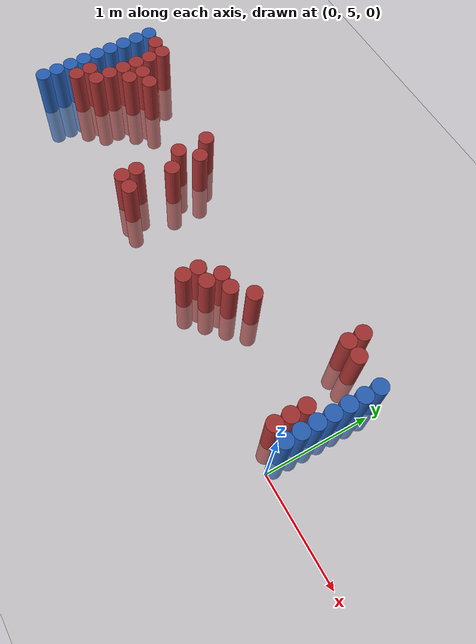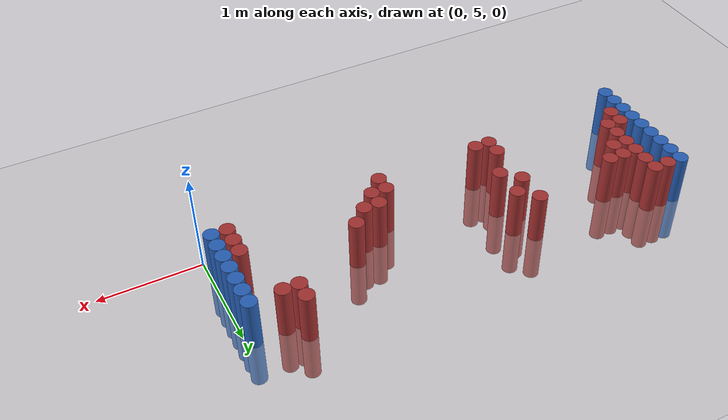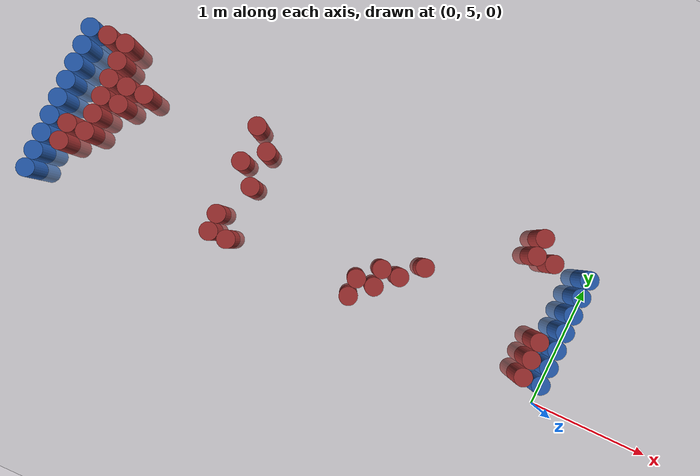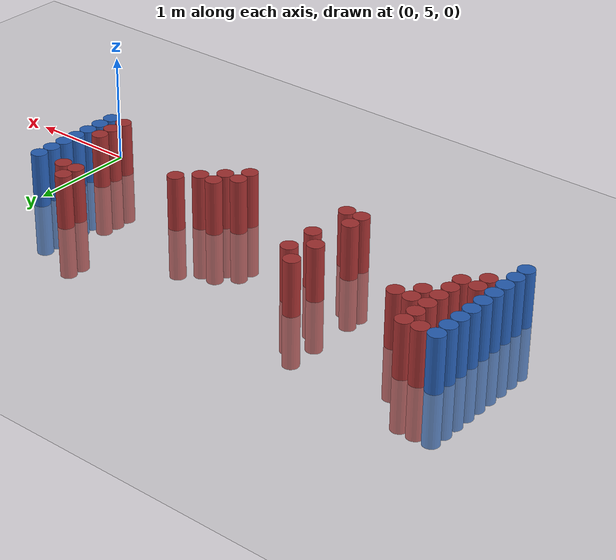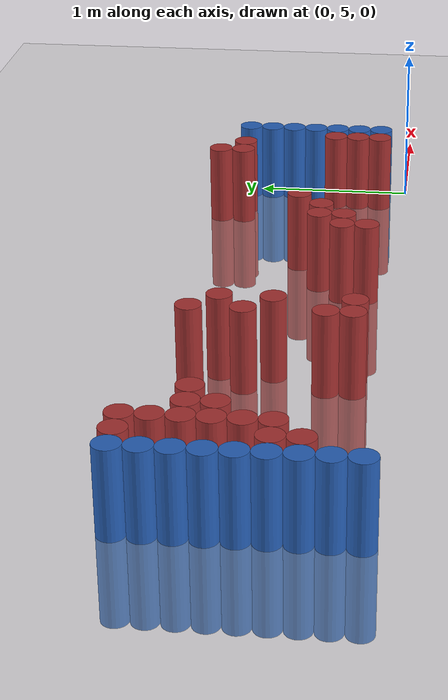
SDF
<sdf version="1.6">
 <world name="default">
  <model name="ground_plane">
   <static>1</static>
   <link name="link">
    <collision name="collision">
     <geometry><plane><normal>0 0 1</normal><size>100 100</size></plane></geometry>
     <surface><friction><ode><mu>100</mu><mu2>50</mu2></ode></friction></surface>
    </collision>
    <visual name="visual">
     <cast_shadows>0</cast_shadows>
     <geometry><plane><normal>0 0 1</normal><size>100 100</size></plane></geometry>
     <material>
      <script><uri>file://media/materials/scripts/gazebo.material</uri><name>Gazebo/Grey</name></script>
     </material>
    </visual>
   </link>
  </model>
  <model name="unit_cylinder_95">
   <static>1</static>
   <pose>-4.425000 5.025000 0.000000 0.000000 0.000000 0.000000</pose>
   <link name="link">
    <inertial>
     <mass>1</mass>
     <inertia><ixx>0.145833</ixx><ixy>0</ixy><ixz>0</ixz><iyy>0.145833</iyy><iyz>0</iyz><izz>0.125</izz></inertia>
    </inertial>
    <collision name="collision">
     <geometry><cylinder><radius>0.075000</radius><length>1</length></cylinder></geometry>
    </collision>
    <visual name="visual">
     <geometry><cylinder><radius>0.075000</radius><length>1</length></cylinder></geometry>
     <material>
      <ambient>0.152000 0.379000 0.720000 1</ambient>
      <diffuse>0.152000 0.379000 0.720000 1</diffuse>
     </material>
     <material>
      <script><name>Gazebo/Grey</name><uri>file://media/materials/scripts/gazebo.material</uri></script>
     </material>
    </visual>
   </link>
  </model>
  <model name="unit_cylinder_96">
   <static>1</static>
   <pose>-4.425000 5.175000 0.000000 0.000000 0.000000 0.000000</pose>
   <link name="link">
    <inertial>
     <mass>1</mass>
     <inertia><ixx>0.145833</ixx><ixy>0</ixy><ixz>0</ixz><iyy>0.145833</iyy><iyz>0</iyz><izz>0.125</izz></inertia>
    </inertial>
    <collision name="collision">
     <geometry><cylinder><radius>0.075000</radius><length>1</length></cylinder></geometry>
    </collision>
    <visual name="visual">
     <geometry><cylinder><radius>0.075000</radius><length>1</length></cylinder></geometry>
     <material>
      <ambient>0.152000 0.379000 0.720000 1</ambient>
      <diffuse>0.152000 0.379000 0.720000 1</diffuse>
     </material>
     <material>
      <script><name>Gazebo/Grey</name><uri>file://media/materials/scripts/gazebo.material</uri></script>
     </material>
    </visual>
   </link>
  </model>
  <model name="unit_cylinder_97">
   <static>1</static>
   <pose>-4.425000 5.325000 0.000000 0.000000 0.000000 0.000000</pose>
   <link name="link">
    <inertial>
     <mass>1</mass>
     <inertia><ixx>0.145833</ixx><ixy>0</ixy><ixz>0</ixz><iyy>0.145833</iyy><iyz>0</iyz><izz>0.125</izz></inertia>
    </inertial>
    <collision name="collision">
     <geometry><cylinder><radius>0.075000</radius><length>1</length></cylinder></geometry>
    </collision>
    <visual name="visual">
     <geometry><cylinder><radius>0.075000</radius><length>1</length></cylinder></geometry>
     <material>
      <ambient>0.152000 0.379000 0.720000 1</ambient>
      <diffuse>0.152000 0.379000 0.720000 1</diffuse>
     </material>
     <material>
      <script><name>Gazebo/Grey</name><uri>file://media/materials/scripts/gazebo.material</uri></script>
     </material>
    </visual>
   </link>
  </model>
  <model name="unit_cylinder_98">
   <static>1</static>
   <pose>-4.425000 5.475000 0.000000 0.000000 0.000000 0.000000</pose>
   <link name="link">
    <inertial>
     <mass>1</mass>
     <inertia><ixx>0.145833</ixx><ixy>0</ixy><ixz>0</ixz><iyy>0.145833</iyy><iyz>0</iyz><izz>0.125</izz></inertia>
    </inertial>
    <collision name="collision">
     <geometry><cylinder><radius>0.075000</radius><length>1</length></cylinder></geometry>
    </collision>
    <visual name="visual">
     <geometry><cylinder><radius>0.075000</radius><length>1</length></cylinder></geometry>
     <material>
      <ambient>0.152000 0.379000 0.720000 1</ambient>
      <diffuse>0.152000 0.379000 0.720000 1</diffuse>
     </material>
     <material>
      <script><name>Gazebo/Grey</name><uri>file://media/materials/scripts/gazebo.material</uri></script>
     </material>
    </visual>
   </link>
  </model>
  <model name="unit_cylinder_99">
   <static>1</static>
   <pose>-4.425000 5.625000 0.000000 0.000000 0.000000 0.000000</pose>
   <link name="link">
    <inertial>
     <mass>1</mass>
     <inertia><ixx>0.145833</ixx><ixy>0</ixy><ixz>0</ixz><iyy>0.145833</iyy><iyz>0</iyz><izz>0.125</izz></inertia>
    </inertial>
    <collision name="collision">
     <geometry><cylinder><radius>0.075000</radius><length>1</length></cylinder></geometry>
    </collision>
    <visual name="visual">
     <geometry><cylinder><radius>0.075000</radius><length>1</length></cylinder></geometry>
     <material>
      <ambient>0.152000 0.379000 0.720000 1</ambient>
      <diffuse>0.152000 0.379000 0.720000 1</diffuse>
     </material>
     <material>
      <script><name>Gazebo/Grey</name><uri>file://media/materials/scripts/gazebo.material</uri></script>
     </material>
    </visual>
   </link>
  </model>
  <model name="unit_cylinder_100">
   <static>1</static>
   <pose>-4.425000 5.775000 0.000000 0.000000 0.000000 0.000000</pose>
   <link name="link">
    <inertial>
     <mass>1</mass>
     <inertia><ixx>0.145833</ixx><ixy>0</ixy><ixz>0</ixz><iyy>0.145833</iyy><iyz>0</iyz><izz>0.125</izz></inertia>
    </inertial>
    <collision name="collision">
     <geometry><cylinder><radius>0.075000</radius><length>1</length></cylinder></geometry>
    </collision>
    <visual name="visual">
     <geometry><cylinder><radius>0.075000</radius><length>1</length></cylinder></geometry>
     <material>
      <ambient>0.152000 0.379000 0.720000 1</ambient>
      <diffuse>0.152000 0.379000 0.720000 1</diffuse>
     </material>
     <material>
      <script><name>Gazebo/Grey</name><uri>file://media/materials/scripts/gazebo.material</uri></script>
     </material>
    </visual>
   </link>
  </model>
  <model name="unit_cylinder_101">
   <static>1</static>
   <pose>-4.425000 5.925000 0.000000 0.000000 0.000000 0.000000</pose>
   <link name="link">
    <inertial>
     <mass>1</mass>
     <inertia><ixx>0.145833</ixx><ixy>0</ixy><ixz>0</ixz><iyy>0.145833</iyy><iyz>0</iyz><izz>0.125</izz></inertia>
    </inertial>
    <collision name="collision">
     <geometry><cylinder><radius>0.075000</radius><length>1</length></cylinder></geometry>
    </collision>
    <visual name="visual">
     <geometry><cylinder><radius>0.075000</radius><length>1</length></cylinder></geometry>
     <material>
      <ambient>0.152000 0.379000 0.720000 1</ambient>
      <diffuse>0.152000 0.379000 0.720000 1</diffuse>
     </material>
     <material>
      <script><name>Gazebo/Grey</name><uri>file://media/materials/scripts/gazebo.material</uri></script>
     </material>
    </visual>
   </link>
  </model>
  <model name="unit_cylinder_102">
   <static>1</static>
   <pose>-4.425000 6.075000 0.000000 0.000000 0.000000 0.000000</pose>
   <link name="link">
    <inertial>
     <mass>1</mass>
     <inertia><ixx>0.145833</ixx><ixy>0</ixy><ixz>0</ixz><iyy>0.145833</iyy><iyz>0</iyz><izz>0.125</izz></inertia>
    </inertial>
    <collision name="collision">
     <geometry><cylinder><radius>0.075000</radius><length>1</length></cylinder></geometry>
    </collision>
    <visual name="visual">
     <geometry><cylinder><radius>0.075000</radius><length>1</length></cylinder></geometry>
     <material>
      <ambient>0.152000 0.379000 0.720000 1</ambient>
      <diffuse>0.152000 0.379000 0.720000 1</diffuse>
     </material>
     <material>
      <script><name>Gazebo/Grey</name><uri>file://media/materials/scripts/gazebo.material</uri></script>
     </material>
    </visual>
   </link>
  </model>
  <model name="unit_cylinder_103">
   <static>1</static>
   <pose>-4.425000 6.225000 0.000000 0.000000 0.000000 0.000000</pose>
   <link name="link">
    <inertial>
     <mass>1</mass>
     <inertia><ixx>0.145833</ixx><ixy>0</ixy><ixz>0</ixz><iyy>0.145833</iyy><iyz>0</iyz><izz>0.125</izz></inertia>
    </inertial>
    <collision name="collision">
     <geometry><cylinder><radius>0.075000</radius><length>1</length></cylinder></geometry>
    </collision>
    <visual name="visual">
     <geometry><cylinder><radius>0.075000</radius><length>1</length></cylinder></geometry>
     <material>
      <ambient>0.152000 0.379000 0.720000 1</ambient>
      <diffuse>0.152000 0.379000 0.720000 1</diffuse>
     </material>
     <material>
      <script><name>Gazebo/Grey</name><uri>file://media/materials/scripts/gazebo.material</uri></script>
     </material>
    </visual>
   </link>
  </model>
  <model name="unit_cylinder_126">
   <static>1</static>
   <pose>-4.275000 5.325000 0.000000 0.000000 0.000000 0.000000</pose>
   <link name="link">
    <inertial>
     <mass>1</mass>
     <inertia><ixx>0.145833</ixx><ixy>0</ixy><ixz>0</ixz><iyy>0.145833</iyy><iyz>0</iyz><izz>0.125</izz></inertia>
    </inertial>
    <collision name="collision">
     <geometry><cylinder><radius>0.075000</radius><length>1</length></cylinder></geometry>
    </collision>
    <visual name="visual">
     <geometry><cylinder><radius>0.075000</radius><length>1</length></cylinder></geometry>
     <material>
      <ambient>0.648000 0.192000 0.192000 1</ambient>
      <diffuse>0.648000 0.192000 0.192000 1</diffuse>
     </material>
     <material>
      <script><name>Gazebo/Grey</name><uri>file://media/materials/scripts/gazebo.material</uri></script>
     </material>
    </visual>
   </link>
  </model>
  <model name="unit_cylinder_127">
   <static>1</static>
   <pose>-4.275000 5.475000 0.000000 0.000000 0.000000 0.000000</pose>
   <link name="link">
    <inertial>
     <mass>1</mass>
     <inertia><ixx>0.145833</ixx><ixy>0</ixy><ixz>0</ixz><iyy>0.145833</iyy><iyz>0</iyz><izz>0.125</izz></inertia>
    </inertial>
    <collision name="collision">
     <geometry><cylinder><radius>0.075000</radius><length>1</length></cylinder></geometry>
    </collision>
    <visual name="visual">
     <geometry><cylinder><radius>0.075000</radius><length>1</length></cylinder></geometry>
     <material>
      <ambient>0.648000 0.192000 0.192000 1</ambient>
      <diffuse>0.648000 0.192000 0.192000 1</diffuse>
     </material>
     <material>
      <script><name>Gazebo/Grey</name><uri>file://media/materials/scripts/gazebo.material</uri></script>
     </material>
    </visual>
   </link>
  </model>
  <model name="unit_cylinder_128">
   <static>1</static>
   <pose>-4.275000 6.225000 0.000000 0.000000 0.000000 0.000000</pose>
   <link name="link">
    <inertial>
     <mass>1</mass>
     <inertia><ixx>0.145833</ixx><ixy>0</ixy><ixz>0</ixz><iyy>0.145833</iyy><iyz>0</iyz><izz>0.125</izz></inertia>
    </inertial>
    <collision name="collision">
     <geometry><cylinder><radius>0.075000</radius><length>1</length></cylinder></geometry>
    </collision>
    <visual name="visual">
     <geometry><cylinder><radius>0.075000</radius><length>1</length></cylinder></geometry>
     <material>
      <ambient>0.648000 0.192000 0.192000 1</ambient>
      <diffuse>0.648000 0.192000 0.192000 1</diffuse>
     </material>
     <material>
      <script><name>Gazebo/Grey</name><uri>file://media/materials/scripts/gazebo.material</uri></script>
     </material>
    </visual>
   </link>
  </model>
  <model name="unit_cylinder_139">
   <static>1</static>
   <pose>-4.125000 5.475000 0.000000 0.000000 0.000000 0.000000</pose>
   <link name="link">
    <inertial>
     <mass>1</mass>
     <inertia><ixx>0.145833</ixx><ixy>0</ixy><ixz>0</ixz><iyy>0.145833</iyy><iyz>0</iyz><izz>0.125</izz></inertia>
    </inertial>
    <collision name="collision">
     <geometry><cylinder><radius>0.075000</radius><length>1</length></cylinder></geometry>
    </collision>
    <visual name="visual">
     <geometry><cylinder><radius>0.075000</radius><length>1</length></cylinder></geometry>
     <material>
      <ambient>0.648000 0.192000 0.192000 1</ambient>
      <diffuse>0.648000 0.192000 0.192000 1</diffuse>
     </material>
     <material>
      <script><name>Gazebo/Grey</name><uri>file://media/materials/scripts/gazebo.material</uri></script>
     </material>
    </visual>
   </link>
  </model>
  <model name="unit_cylinder_140">
   <static>1</static>
   <pose>-4.125000 5.625000 0.000000 0.000000 0.000000 0.000000</pose>
   <link name="link">
    <inertial>
     <mass>1</mass>
     <inertia><ixx>0.145833</ixx><ixy>0</ixy><ixz>0</ixz><iyy>0.145833</iyy><iyz>0</iyz><izz>0.125</izz></inertia>
    </inertial>
    <collision name="collision">
     <geometry><cylinder><radius>0.075000</radius><length>1</length></cylinder></geometry>
    </collision>
    <visual name="visual">
     <geometry><cylinder><radius>0.075000</radius><length>1</length></cylinder></geometry>
     <material>
      <ambient>0.648000 0.192000 0.192000 1</ambient>
      <diffuse>0.648000 0.192000 0.192000 1</diffuse>
     </material>
     <material>
      <script><name>Gazebo/Grey</name><uri>file://media/materials/scripts/gazebo.material</uri></script>
     </material>
    </visual>
   </link>
  </model>
  <model name="unit_cylinder_141">
   <static>1</static>
   <pose>-4.125000 5.775000 0.000000 0.000000 0.000000 0.000000</pose>
   <link name="link">
    <inertial>
     <mass>1</mass>
     <inertia><ixx>0.145833</ixx><ixy>0</ixy><ixz>0</ixz><iyy>0.145833</iyy><iyz>0</iyz><izz>0.125</izz></inertia>
    </inertial>
    <collision name="collision">
     <geometry><cylinder><radius>0.075000</radius><length>1</length></cylinder></geometry>
    </collision>
    <visual name="visual">
     <geometry><cylinder><radius>0.075000</radius><length>1</length></cylinder></geometry>
     <material>
      <ambient>0.648000 0.192000 0.192000 1</ambient>
      <diffuse>0.648000 0.192000 0.192000 1</diffuse>
     </material>
     <material>
      <script><name>Gazebo/Grey</name><uri>file://media/materials/scripts/gazebo.material</uri></script>
     </material>
    </visual>
   </link>
  </model>
  <model name="unit_cylinder_142">
   <static>1</static>
   <pose>-4.125000 5.925000 0.000000 0.000000 0.000000 0.000000</pose>
   <link name="link">
    <inertial>
     <mass>1</mass>
     <inertia><ixx>0.145833</ixx><ixy>0</ixy><ixz>0</ixz><iyy>0.145833</iyy><iyz>0</iyz><izz>0.125</izz></inertia>
    </inertial>
    <collision name="collision">
     <geometry><cylinder><radius>0.075000</radius><length>1</length></cylinder></geometry>
    </collision>
    <visual name="visual">
     <geometry><cylinder><radius>0.075000</radius><length>1</length></cylinder></geometry>
     <material>
      <ambient>0.648000 0.192000 0.192000 1</ambient>
      <diffuse>0.648000 0.192000 0.192000 1</diffuse>
     </material>
     <material>
      <script><name>Gazebo/Grey</name><uri>file://media/materials/scripts/gazebo.material</uri></script>
     </material>
    </visual>
   </link>
  </model>
  <model name="unit_cylinder_143">
   <static>1</static>
   <pose>-4.125000 6.075000 0.000000 0.000000 0.000000 0.000000</pose>
   <link name="link">
    <inertial>
     <mass>1</mass>
     <inertia><ixx>0.145833</ixx><ixy>0</ixy><ixz>0</ixz><iyy>0.145833</iyy><iyz>0</iyz><izz>0.125</izz></inertia>
    </inertial>
    <collision name="collision">
     <geometry><cylinder><radius>0.075000</radius><length>1</length></cylinder></geometry>
    </collision>
    <visual name="visual">
     <geometry><cylinder><radius>0.075000</radius><length>1</length></cylinder></geometry>
     <material>
      <ambient>0.648000 0.192000 0.192000 1</ambient>
      <diffuse>0.648000 0.192000 0.192000 1</diffuse>
     </material>
     <material>
      <script><name>Gazebo/Grey</name><uri>file://media/materials/scripts/gazebo.material</uri></script>
     </material>
    </visual>
   </link>
  </model>
  <model name="unit_cylinder_144">
   <static>1</static>
   <pose>-4.125000 6.225000 0.000000 0.000000 0.000000 0.000000</pose>
   <link name="link">
    <inertial>
     <mass>1</mass>
     <inertia><ixx>0.145833</ixx><ixy>0</ixy><ixz>0</ixz><iyy>0.145833</iyy><iyz>0</iyz><izz>0.125</izz></inertia>
    </inertial>
    <collision name="collision">
     <geometry><cylinder><radius>0.075000</radius><length>1</length></cylinder></geometry>
    </collision>
    <visual name="visual">
     <geometry><cylinder><radius>0.075000</radius><length>1</length></cylinder></geometry>
     <material>
      <ambient>0.648000 0.192000 0.192000 1</ambient>
      <diffuse>0.648000 0.192000 0.192000 1</diffuse>
     </material>
     <material>
      <script><name>Gazebo/Grey</name><uri>file://media/materials/scripts/gazebo.material</uri></script>
     </material>
    </visual>
   </link>
  </model>
  <model name="unit_cylinder_146">
   <static>1</static>
   <pose>-3.975000 5.775000 0.000000 0.000000 0.000000 0.000000</pose>
   <link name="link">
    <inertial>
     <mass>1</mass>
     <inertia><ixx>0.145833</ixx><ixy>0</ixy><ixz>0</ixz><iyy>0.145833</iyy><iyz>0</iyz><izz>0.125</izz></inertia>
    </inertial>
    <collision name="collision">
     <geometry><cylinder><radius>0.075000</radius><length>1</length></cylinder></geometry>
    </collision>
    <visual name="visual">
     <geometry><cylinder><radius>0.075000</radius><length>1</length></cylinder></geometry>
     <material>
      <ambient>0.648000 0.192000 0.192000 1</ambient>
      <diffuse>0.648000 0.192000 0.192000 1</diffuse>
     </material>
     <material>
      <script><name>Gazebo/Grey</name><uri>file://media/materials/scripts/gazebo.material</uri></script>
     </material>
    </visual>
   </link>
  </model>
  <model name="unit_cylinder_147">
   <static>1</static>
   <pose>-3.975000 5.925000 0.000000 0.000000 0.000000 0.000000</pose>
   <link name="link">
    <inertial>
     <mass>1</mass>
     <inertia><ixx>0.145833</ixx><ixy>0</ixy><ixz>0</ixz><iyy>0.145833</iyy><iyz>0</iyz><izz>0.125</izz></inertia>
    </inertial>
    <collision name="collision">
     <geometry><cylinder><radius>0.075000</radius><length>1</length></cylinder></geometry>
    </collision>
    <visual name="visual">
     <geometry><cylinder><radius>0.075000</radius><length>1</length></cylinder></geometry>
     <material>
      <ambient>0.648000 0.192000 0.192000 1</ambient>
      <diffuse>0.648000 0.192000 0.192000 1</diffuse>
     </material>
     <material>
      <script><name>Gazebo/Grey</name><uri>file://media/materials/scripts/gazebo.material</uri></script>
     </material>
    </visual>
   </link>
  </model>
  <model name="unit_cylinder_149">
   <static>1</static>
   <pose>-3.825000 5.925000 0.000000 0.000000 0.000000 0.000000</pose>
   <link name="link">
    <inertial>
     <mass>1</mass>
     <inertia><ixx>0.145833</ixx><ixy>0</ixy><ixz>0</ixz><iyy>0.145833</iyy><iyz>0</iyz><izz>0.125</izz></inertia>
    </inertial>
    <collision name="collision">
     <geometry><cylinder><radius>0.075000</radius><length>1</length></cylinder></geometry>
    </collision>
    <visual name="visual">
     <geometry><cylinder><radius>0.075000</radius><length>1</length></cylinder></geometry>
     <material>
      <ambient>0.648000 0.192000 0.192000 1</ambient>
      <diffuse>0.648000 0.192000 0.192000 1</diffuse>
     </material>
     <material>
      <script><name>Gazebo/Grey</name><uri>file://media/materials/scripts/gazebo.material</uri></script>
     </material>
    </visual>
   </link>
  </model>
  <model name="unit_cylinder_176">
   <static>1</static>
   <pose>-2.925000 5.175000 0.000000 0.000000 0.000000 0.000000</pose>
   <link name="link">
    <inertial>
     <mass>1</mass>
     <inertia><ixx>0.145833</ixx><ixy>0</ixy><ixz>0</ixz><iyy>0.145833</iyy><iyz>0</iyz><izz>0.125</izz></inertia>
    </inertial>
    <collision name="collision">
     <geometry><cylinder><radius>0.075000</radius><length>1</length></cylinder></geometry>
    </collision>
    <visual name="visual">
     <geometry><cylinder><radius>0.075000</radius><length>1</length></cylinder></geometry>
     <material>
      <ambient>0.648000 0.192000 0.192000 1</ambient>
      <diffuse>0.648000 0.192000 0.192000 1</diffuse>
     </material>
     <material>
      <script><name>Gazebo/Grey</name><uri>file://media/materials/scripts/gazebo.material</uri></script>
     </material>
    </visual>
   </link>
  </model>
  <model name="unit_cylinder_177">
   <static>1</static>
   <pose>-2.925000 5.325000 0.000000 0.000000 0.000000 0.000000</pose>
   <link name="link">
    <inertial>
     <mass>1</mass>
     <inertia><ixx>0.145833</ixx><ixy>0</ixy><ixz>0</ixz><iyy>0.145833</iyy><iyz>0</iyz><izz>0.125</izz></inertia>
    </inertial>
    <collision name="collision">
     <geometry><cylinder><radius>0.075000</radius><length>1</length></cylinder></geometry>
    </collision>
    <visual name="visual">
     <geometry><cylinder><radius>0.075000</radius><length>1</length></cylinder></geometry>
     <material>
      <ambient>0.648000 0.192000 0.192000 1</ambient>
      <diffuse>0.648000 0.192000 0.192000 1</diffuse>
     </material>
     <material>
      <script><name>Gazebo/Grey</name><uri>file://media/materials/scripts/gazebo.material</uri></script>
     </material>
    </visual>
   </link>
  </model>
  <model name="unit_cylinder_178">
   <static>1</static>
   <pose>-2.925000 5.775000 0.000000 0.000000 0.000000 0.000000</pose>
   <link name="link">
    <inertial>
     <mass>1</mass>
     <inertia><ixx>0.145833</ixx><ixy>0</ixy><ixz>0</ixz><iyy>0.145833</iyy><iyz>0</iyz><izz>0.125</izz></inertia>
    </inertial>
    <collision name="collision">
     <geometry><cylinder><radius>0.075000</radius><length>1</length></cylinder></geometry>
    </collision>
    <visual name="visual">
     <geometry><cylinder><radius>0.075000</radius><length>1</length></cylinder></geometry>
     <material>
      <ambient>0.648000 0.192000 0.192000 1</ambient>
      <diffuse>0.648000 0.192000 0.192000 1</diffuse>
     </material>
     <material>
      <script><name>Gazebo/Grey</name><uri>file://media/materials/scripts/gazebo.material</uri></script>
     </material>
    </visual>
   </link>
  </model>
  <model name="unit_cylinder_179">
   <static>1</static>
   <pose>-2.925000 6.075000 0.000000 0.000000 0.000000 0.000000</pose>
   <link name="link">
    <inertial>
     <mass>1</mass>
     <inertia><ixx>0.145833</ixx><ixy>0</ixy><ixz>0</ixz><iyy>0.145833</iyy><iyz>0</iyz><izz>0.125</izz></inertia>
    </inertial>
    <collision name="collision">
     <geometry><cylinder><radius>0.075000</radius><length>1</length></cylinder></geometry>
    </collision>
    <visual name="visual">
     <geometry><cylinder><radius>0.075000</radius><length>1</length></cylinder></geometry>
     <material>
      <ambient>0.648000 0.192000 0.192000 1</ambient>
      <diffuse>0.648000 0.192000 0.192000 1</diffuse>
     </material>
     <material>
      <script><name>Gazebo/Grey</name><uri>file://media/materials/scripts/gazebo.material</uri></script>
     </material>
    </visual>
   </link>
  </model>
  <model name="unit_cylinder_187">
   <static>1</static>
   <pose>-2.775000 5.175000 0.000000 0.000000 0.000000 0.000000</pose>
   <link name="link">
    <inertial>
     <mass>1</mass>
     <inertia><ixx>0.145833</ixx><ixy>0</ixy><ixz>0</ixz><iyy>0.145833</iyy><iyz>0</iyz><izz>0.125</izz></inertia>
    </inertial>
    <collision name="collision">
     <geometry><cylinder><radius>0.075000</radius><length>1</length></cylinder></geometry>
    </collision>
    <visual name="visual">
     <geometry><cylinder><radius>0.075000</radius><length>1</length></cylinder></geometry>
     <material>
      <ambient>0.648000 0.192000 0.192000 1</ambient>
      <diffuse>0.648000 0.192000 0.192000 1</diffuse>
     </material>
     <material>
      <script><name>Gazebo/Grey</name><uri>file://media/materials/scripts/gazebo.material</uri></script>
     </material>
    </visual>
   </link>
  </model>
  <model name="unit_cylinder_188">
   <static>1</static>
   <pose>-2.775000 5.625000 0.000000 0.000000 0.000000 0.000000</pose>
   <link name="link">
    <inertial>
     <mass>1</mass>
     <inertia><ixx>0.145833</ixx><ixy>0</ixy><ixz>0</ixz><iyy>0.145833</iyy><iyz>0</iyz><izz>0.125</izz></inertia>
    </inertial>
    <collision name="collision">
     <geometry><cylinder><radius>0.075000</radius><length>1</length></cylinder></geometry>
    </collision>
    <visual name="visual">
     <geometry><cylinder><radius>0.075000</radius><length>1</length></cylinder></geometry>
     <material>
      <ambient>0.648000 0.192000 0.192000 1</ambient>
      <diffuse>0.648000 0.192000 0.192000 1</diffuse>
     </material>
     <material>
      <script><name>Gazebo/Grey</name><uri>file://media/materials/scripts/gazebo.material</uri></script>
     </material>
    </visual>
   </link>
  </model>
  <model name="unit_cylinder_189">
   <static>1</static>
   <pose>-2.775000 5.925000 0.000000 0.000000 0.000000 0.000000</pose>
   <link name="link">
    <inertial>
     <mass>1</mass>
     <inertia><ixx>0.145833</ixx><ixy>0</ixy><ixz>0</ixz><iyy>0.145833</iyy><iyz>0</iyz><izz>0.125</izz></inertia>
    </inertial>
    <collision name="collision">
     <geometry><cylinder><radius>0.075000</radius><length>1</length></cylinder></geometry>
    </collision>
    <visual name="visual">
     <geometry><cylinder><radius>0.075000</radius><length>1</length></cylinder></geometry>
     <material>
      <ambient>0.648000 0.192000 0.192000 1</ambient>
      <diffuse>0.648000 0.192000 0.192000 1</diffuse>
     </material>
     <material>
      <script><name>Gazebo/Grey</name><uri>file://media/materials/scripts/gazebo.material</uri></script>
     </material>
    </visual>
   </link>
  </model>
  <model name="unit_cylinder_219">
   <static>1</static>
   <pose>-1.725000 5.175000 0.000000 0.000000 0.000000 0.000000</pose>
   <link name="link">
    <inertial>
     <mass>1</mass>
     <inertia><ixx>0.145833</ixx><ixy>0</ixy><ixz>0</ixz><iyy>0.145833</iyy><iyz>0</iyz><izz>0.125</izz></inertia>
    </inertial>
    <collision name="collision">
     <geometry><cylinder><radius>0.075000</radius><length>1</length></cylinder></geometry>
    </collision>
    <visual name="visual">
     <geometry><cylinder><radius>0.075000</radius><length>1</length></cylinder></geometry>
     <material>
      <ambient>0.648000 0.192000 0.192000 1</ambient>
      <diffuse>0.648000 0.192000 0.192000 1</diffuse>
     </material>
     <material>
      <script><name>Gazebo/Grey</name><uri>file://media/materials/scripts/gazebo.material</uri></script>
     </material>
    </visual>
   </link>
  </model>
  <model name="unit_cylinder_220">
   <static>1</static>
   <pose>-1.725000 5.325000 0.000000 0.000000 0.000000 0.000000</pose>
   <link name="link">
    <inertial>
     <mass>1</mass>
     <inertia><ixx>0.145833</ixx><ixy>0</ixy><ixz>0</ixz><iyy>0.145833</iyy><iyz>0</iyz><izz>0.125</izz></inertia>
    </inertial>
    <collision name="collision">
     <geometry><cylinder><radius>0.075000</radius><length>1</length></cylinder></geometry>
    </collision>
    <visual name="visual">
     <geometry><cylinder><radius>0.075000</radius><length>1</length></cylinder></geometry>
     <material>
      <ambient>0.648000 0.192000 0.192000 1</ambient>
      <diffuse>0.648000 0.192000 0.192000 1</diffuse>
     </material>
     <material>
      <script><name>Gazebo/Grey</name><uri>file://media/materials/scripts/gazebo.material</uri></script>
     </material>
    </visual>
   </link>
  </model>
  <model name="unit_cylinder_222">
   <static>1</static>
   <pose>-1.575000 5.325000 0.000000 0.000000 0.000000 0.000000</pose>
   <link name="link">
    <inertial>
     <mass>1</mass>
     <inertia><ixx>0.145833</ixx><ixy>0</ixy><ixz>0</ixz><iyy>0.145833</iyy><iyz>0</iyz><izz>0.125</izz></inertia>
    </inertial>
    <collision name="collision">
     <geometry><cylinder><radius>0.075000</radius><length>1</length></cylinder></geometry>
    </collision>
    <visual name="visual">
     <geometry><cylinder><radius>0.075000</radius><length>1</length></cylinder></geometry>
     <material>
      <ambient>0.648000 0.192000 0.192000 1</ambient>
      <diffuse>0.648000 0.192000 0.192000 1</diffuse>
     </material>
     <material>
      <script><name>Gazebo/Grey</name><uri>file://media/materials/scripts/gazebo.material</uri></script>
     </material>
    </visual>
   </link>
  </model>
  <model name="unit_cylinder_223">
   <static>1</static>
   <pose>-1.575000 5.475000 0.000000 0.000000 0.000000 0.000000</pose>
   <link name="link">
    <inertial>
     <mass>1</mass>
     <inertia><ixx>0.145833</ixx><ixy>0</ixy><ixz>0</ixz><iyy>0.145833</iyy><iyz>0</iyz><izz>0.125</izz></inertia>
    </inertial>
    <collision name="collision">
     <geometry><cylinder><radius>0.075000</radius><length>1</length></cylinder></geometry>
    </collision>
    <visual name="visual">
     <geometry><cylinder><radius>0.075000</radius><length>1</length></cylinder></geometry>
     <material>
      <ambient>0.648000 0.192000 0.192000 1</ambient>
      <diffuse>0.648000 0.192000 0.192000 1</diffuse>
     </material>
     <material>
      <script><name>Gazebo/Grey</name><uri>file://media/materials/scripts/gazebo.material</uri></script>
     </material>
    </visual>
   </link>
  </model>
  <model name="unit_cylinder_224">
   <static>1</static>
   <pose>-1.425000 5.475000 0.000000 0.000000 0.000000 0.000000</pose>
   <link name="link">
    <inertial>
     <mass>1</mass>
     <inertia><ixx>0.145833</ixx><ixy>0</ixy><ixz>0</ixz><iyy>0.145833</iyy><iyz>0</iyz><izz>0.125</izz></inertia>
    </inertial>
    <collision name="collision">
     <geometry><cylinder><radius>0.075000</radius><length>1</length></cylinder></geometry>
    </collision>
    <visual name="visual">
     <geometry><cylinder><radius>0.075000</radius><length>1</length></cylinder></geometry>
     <material>
      <ambient>0.648000 0.192000 0.192000 1</ambient>
      <diffuse>0.648000 0.192000 0.192000 1</diffuse>
     </material>
     <material>
      <script><name>Gazebo/Grey</name><uri>file://media/materials/scripts/gazebo.material</uri></script>
     </material>
    </visual>
   </link>
  </model>
  <model name="unit_cylinder_227">
   <static>1</static>
   <pose>-1.275000 5.625000 0.000000 0.000000 0.000000 0.000000</pose>
   <link name="link">
    <inertial>
     <mass>1</mass>
     <inertia><ixx>0.145833</ixx><ixy>0</ixy><ixz>0</ixz><iyy>0.145833</iyy><iyz>0</iyz><izz>0.125</izz></inertia>
    </inertial>
    <collision name="collision">
     <geometry><cylinder><radius>0.075000</radius><length>1</length></cylinder></geometry>
    </collision>
    <visual name="visual">
     <geometry><cylinder><radius>0.075000</radius><length>1</length></cylinder></geometry>
     <material>
      <ambient>0.648000 0.192000 0.192000 1</ambient>
      <diffuse>0.648000 0.192000 0.192000 1</diffuse>
     </material>
     <material>
      <script><name>Gazebo/Grey</name><uri>file://media/materials/scripts/gazebo.material</uri></script>
     </material>
    </visual>
   </link>
  </model>
  <model name="unit_cylinder_237">
   <static>1</static>
   <pose>-0.525000 6.075000 0.000000 0.000000 0.000000 0.000000</pose>
   <link name="link">
    <inertial>
     <mass>1</mass>
     <inertia><ixx>0.145833</ixx><ixy>0</ixy><ixz>0</ixz><iyy>0.145833</iyy><iyz>0</iyz><izz>0.125</izz></inertia>
    </inertial>
    <collision name="collision">
     <geometry><cylinder><radius>0.075000</radius><length>1</length></cylinder></geometry>
    </collision>
    <visual name="visual">
     <geometry><cylinder><radius>0.075000</radius><length>1</length></cylinder></geometry>
     <material>
      <ambient>0.648000 0.192000 0.192000 1</ambient>
      <diffuse>0.648000 0.192000 0.192000 1</diffuse>
     </material>
     <material>
      <script><name>Gazebo/Grey</name><uri>file://media/materials/scripts/gazebo.material</uri></script>
     </material>
    </visual>
   </link>
  </model>
  <model name="unit_cylinder_238">
   <static>1</static>
   <pose>-0.525000 6.225000 0.000000 0.000000 0.000000 0.000000</pose>
   <link name="link">
    <inertial>
     <mass>1</mass>
     <inertia><ixx>0.145833</ixx><ixy>0</ixy><ixz>0</ixz><iyy>0.145833</iyy><iyz>0</iyz><izz>0.125</izz></inertia>
    </inertial>
    <collision name="collision">
     <geometry><cylinder><radius>0.075000</radius><length>1</length></cylinder></geometry>
    </collision>
    <visual name="visual">
     <geometry><cylinder><radius>0.075000</radius><length>1</length></cylinder></geometry>
     <material>
      <ambient>0.648000 0.192000 0.192000 1</ambient>
      <diffuse>0.648000 0.192000 0.192000 1</diffuse>
     </material>
     <material>
      <script><name>Gazebo/Grey</name><uri>file://media/materials/scripts/gazebo.material</uri></script>
     </material>
    </visual>
   </link>
  </model>
  <model name="unit_cylinder_241">
   <static>1</static>
   <pose>-0.375000 6.075000 0.000000 0.000000 0.000000 0.000000</pose>
   <link name="link">
    <inertial>
     <mass>1</mass>
     <inertia><ixx>0.145833</ixx><ixy>0</ixy><ixz>0</ixz><iyy>0.145833</iyy><iyz>0</iyz><izz>0.125</izz></inertia>
    </inertial>
    <collision name="collision">
     <geometry><cylinder><radius>0.075000</radius><length>1</length></cylinder></geometry>
    </collision>
    <visual name="visual">
     <geometry><cylinder><radius>0.075000</radius><length>1</length></cylinder></geometry>
     <material>
      <ambient>0.648000 0.192000 0.192000 1</ambient>
      <diffuse>0.648000 0.192000 0.192000 1</diffuse>
     </material>
     <material>
      <script><name>Gazebo/Grey</name><uri>file://media/materials/scripts/gazebo.material</uri></script>
     </material>
    </visual>
   </link>
  </model>
  <model name="unit_cylinder_243">
   <static>1</static>
   <pose>-0.225000 5.175000 0.000000 0.000000 0.000000 0.000000</pose>
   <link name="link">
    <inertial>
     <mass>1</mass>
     <inertia><ixx>0.145833</ixx><ixy>0</ixy><ixz>0</ixz><iyy>0.145833</iyy><iyz>0</iyz><izz>0.125</izz></inertia>
    </inertial>
    <collision name="collision">
     <geometry><cylinder><radius>0.075000</radius><length>1</length></cylinder></geometry>
    </collision>
    <visual name="visual">
     <geometry><cylinder><radius>0.075000</radius><length>1</length></cylinder></geometry>
     <material>
      <ambient>0.648000 0.192000 0.192000 1</ambient>
      <diffuse>0.648000 0.192000 0.192000 1</diffuse>
     </material>
     <material>
      <script><name>Gazebo/Grey</name><uri>file://media/materials/scripts/gazebo.material</uri></script>
     </material>
    </visual>
   </link>
  </model>
  <model name="unit_cylinder_244">
   <static>1</static>
   <pose>-0.225000 5.325000 0.000000 0.000000 0.000000 0.000000</pose>
   <link name="link">
    <inertial>
     <mass>1</mass>
     <inertia><ixx>0.145833</ixx><ixy>0</ixy><ixz>0</ixz><iyy>0.145833</iyy><iyz>0</iyz><izz>0.125</izz></inertia>
    </inertial>
    <collision name="collision">
     <geometry><cylinder><radius>0.075000</radius><length>1</length></cylinder></geometry>
    </collision>
    <visual name="visual">
     <geometry><cylinder><radius>0.075000</radius><length>1</length></cylinder></geometry>
     <material>
      <ambient>0.648000 0.192000 0.192000 1</ambient>
      <diffuse>0.648000 0.192000 0.192000 1</diffuse>
     </material>
     <material>
      <script><name>Gazebo/Grey</name><uri>file://media/materials/scripts/gazebo.material</uri></script>
     </material>
    </visual>
   </link>
  </model>
  <model name="unit_cylinder_245">
   <static>1</static>
   <pose>-0.225000 5.475000 0.000000 0.000000 0.000000 0.000000</pose>
   <link name="link">
    <inertial>
     <mass>1</mass>
     <inertia><ixx>0.145833</ixx><ixy>0</ixy><ixz>0</ixz><iyy>0.145833</iyy><iyz>0</iyz><izz>0.125</izz></inertia>
    </inertial>
    <collision name="collision">
     <geometry><cylinder><radius>0.075000</radius><length>1</length></cylinder></geometry>
    </collision>
    <visual name="visual">
     <geometry><cylinder><radius>0.075000</radius><length>1</length></cylinder></geometry>
     <material>
      <ambient>0.648000 0.192000 0.192000 1</ambient>
      <diffuse>0.648000 0.192000 0.192000 1</diffuse>
     </material>
     <material>
      <script><name>Gazebo/Grey</name><uri>file://media/materials/scripts/gazebo.material</uri></script>
     </material>
    </visual>
   </link>
  </model>
  <model name="unit_cylinder_253">
   <static>1</static>
   <pose>-0.075000 5.175000 0.000000 0.000000 0.000000 0.000000</pose>
   <link name="link">
    <inertial>
     <mass>1</mass>
     <inertia><ixx>0.145833</ixx><ixy>0</ixy><ixz>0</ixz><iyy>0.145833</iyy><iyz>0</iyz><izz>0.125</izz></inertia>
    </inertial>
    <collision name="collision">
     <geometry><cylinder><radius>0.075000</radius><length>1</length></cylinder></geometry>
    </collision>
    <visual name="visual">
     <geometry><cylinder><radius>0.075000</radius><length>1</length></cylinder></geometry>
     <material>
      <ambient>0.152000 0.379000 0.720000 1</ambient>
      <diffuse>0.152000 0.379000 0.720000 1</diffuse>
     </material>
     <material>
      <script><name>Gazebo/Grey</name><uri>file://media/materials/scripts/gazebo.material</uri></script>
     </material>
    </visual>
   </link>
  </model>
  <model name="unit_cylinder_254">
   <static>1</static>
   <pose>-0.075000 5.325000 0.000000 0.000000 0.000000 0.000000</pose>
   <link name="link">
    <inertial>
     <mass>1</mass>
     <inertia><ixx>0.145833</ixx><ixy>0</ixy><ixz>0</ixz><iyy>0.145833</iyy><iyz>0</iyz><izz>0.125</izz></inertia>
    </inertial>
    <collision name="collision">
     <geometry><cylinder><radius>0.075000</radius><length>1</length></cylinder></geometry>
    </collision>
    <visual name="visual">
     <geometry><cylinder><radius>0.075000</radius><length>1</length></cylinder></geometry>
     <material>
      <ambient>0.152000 0.379000 0.720000 1</ambient>
      <diffuse>0.152000 0.379000 0.720000 1</diffuse>
     </material>
     <material>
      <script><name>Gazebo/Grey</name><uri>file://media/materials/scripts/gazebo.material</uri></script>
     </material>
    </visual>
   </link>
  </model>
  <model name="unit_cylinder_255">
   <static>1</static>
   <pose>-0.075000 5.475000 0.000000 0.000000 0.000000 0.000000</pose>
   <link name="link">
    <inertial>
     <mass>1</mass>
     <inertia><ixx>0.145833</ixx><ixy>0</ixy><ixz>0</ixz><iyy>0.145833</iyy><iyz>0</iyz><izz>0.125</izz></inertia>
    </inertial>
    <collision name="collision">
     <geometry><cylinder><radius>0.075000</radius><length>1</length></cylinder></geometry>
    </collision>
    <visual name="visual">
     <geometry><cylinder><radius>0.075000</radius><length>1</length></cylinder></geometry>
     <material>
      <ambient>0.152000 0.379000 0.720000 1</ambient>
      <diffuse>0.152000 0.379000 0.720000 1</diffuse>
     </material>
     <material>
      <script><name>Gazebo/Grey</name><uri>file://media/materials/scripts/gazebo.material</uri></script>
     </material>
    </visual>
   </link>
  </model>
  <model name="unit_cylinder_256">
   <static>1</static>
   <pose>-0.075000 5.625000 0.000000 0.000000 0.000000 0.000000</pose>
   <link name="link">
    <inertial>
     <mass>1</mass>
     <inertia><ixx>0.145833</ixx><ixy>0</ixy><ixz>0</ixz><iyy>0.145833</iyy><iyz>0</iyz><izz>0.125</izz></inertia>
    </inertial>
    <collision name="collision">
     <geometry><cylinder><radius>0.075000</radius><length>1</length></cylinder></geometry>
    </collision>
    <visual name="visual">
     <geometry><cylinder><radius>0.075000</radius><length>1</length></cylinder></geometry>
     <material>
      <ambient>0.152000 0.379000 0.720000 1</ambient>
      <diffuse>0.152000 0.379000 0.720000 1</diffuse>
     </material>
     <material>
      <script><name>Gazebo/Grey</name><uri>file://media/materials/scripts/gazebo.material</uri></script>
     </material>
    </visual>
   </link>
  </model>
  <model name="unit_cylinder_257">
   <static>1</static>
   <pose>-0.075000 5.775000 0.000000 0.000000 0.000000 0.000000</pose>
   <link name="link">
    <inertial>
     <mass>1</mass>
     <inertia><ixx>0.145833</ixx><ixy>0</ixy><ixz>0</ixz><iyy>0.145833</iyy><iyz>0</iyz><izz>0.125</izz></inertia>
    </inertial>
    <collision name="collision">
     <geometry><cylinder><radius>0.075000</radius><length>1</length></cylinder></geometry>
    </collision>
    <visual name="visual">
     <geometry><cylinder><radius>0.075000</radius><length>1</length></cylinder></geometry>
     <material>
      <ambient>0.152000 0.379000 0.720000 1</ambient>
      <diffuse>0.152000 0.379000 0.720000 1</diffuse>
     </material>
     <material>
      <script><name>Gazebo/Grey</name><uri>file://media/materials/scripts/gazebo.material</uri></script>
     </material>
    </visual>
   </link>
  </model>
  <model name="unit_cylinder_258">
   <static>1</static>
   <pose>-0.075000 5.925000 0.000000 0.000000 0.000000 0.000000</pose>
   <link name="link">
    <inertial>
     <mass>1</mass>
     <inertia><ixx>0.145833</ixx><ixy>0</ixy><ixz>0</ixz><iyy>0.145833</iyy><iyz>0</iyz><izz>0.125</izz></inertia>
    </inertial>
    <collision name="collision">
     <geometry><cylinder><radius>0.075000</radius><length>1</length></cylinder></geometry>
    </collision>
    <visual name="visual">
     <geometry><cylinder><radius>0.075000</radius><length>1</length></cylinder></geometry>
     <material>
      <ambient>0.152000 0.379000 0.720000 1</ambient>
      <diffuse>0.152000 0.379000 0.720000 1</diffuse>
     </material>
     <material>
      <script><name>Gazebo/Grey</name><uri>file://media/materials/scripts/gazebo.material</uri></script>
     </material>
    </visual>
   </link>
  </model>
  <model name="unit_cylinder_259">
   <static>1</static>
   <pose>-0.075000 6.075000 0.000000 0.000000 0.000000 0.000000</pose>
   <link name="link">
    <inertial>
     <mass>1</mass>
     <inertia><ixx>0.145833</ixx><ixy>0</ixy><ixz>0</ixz><iyy>0.145833</iyy><iyz>0</iyz><izz>0.125</izz></inertia>
    </inertial>
    <collision name="collision">
     <geometry><cylinder><radius>0.075000</radius><length>1</length></cylinder></geometry>
    </collision>
    <visual name="visual">
     <geometry><cylinder><radius>0.075000</radius><length>1</length></cylinder></geometry>
     <material>
      <ambient>0.152000 0.379000 0.720000 1</ambient>
      <diffuse>0.152000 0.379000 0.720000 1</diffuse>
     </material>
     <material>
      <script><name>Gazebo/Grey</name><uri>file://media/materials/scripts/gazebo.material</uri></script>
     </material>
    </visual>
   </link>
  </model>
 </world>
</sdf>
